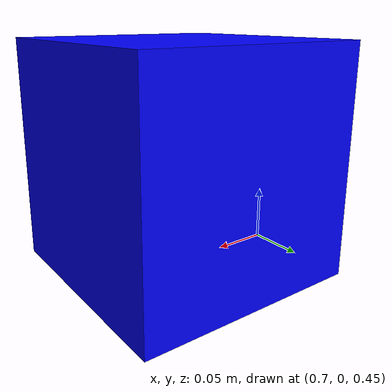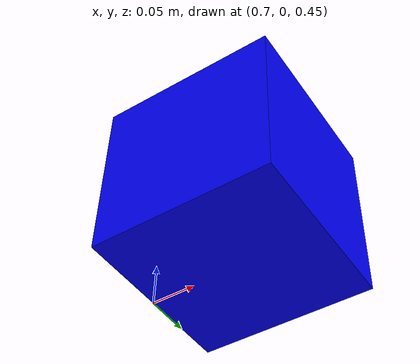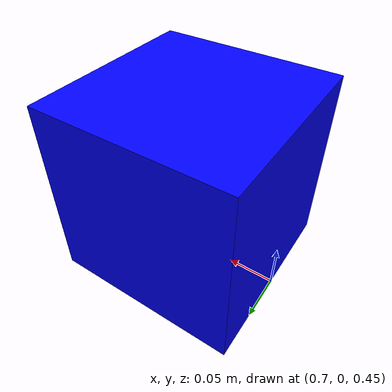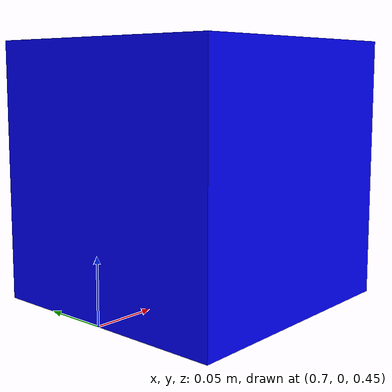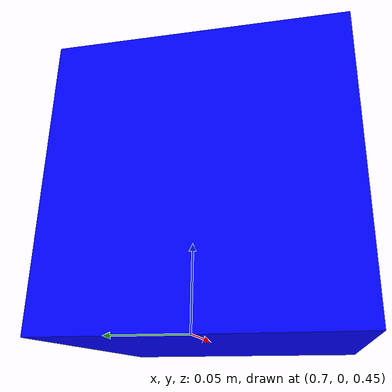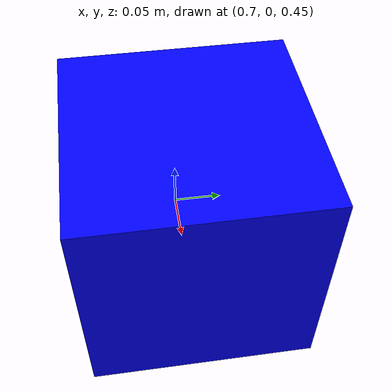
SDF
<?xml version="1.0" ?>
<sdf version="1.6">
  <model name="test_box">
    <pose>0.8 0 0.55 0 0 0</pose>
    <link name="link">
      <visual name="visual">
        <geometry><box><size>0.2 0.2 0.2</size></box></geometry>
        <material><ambient>0 0 1 1</ambient><diffuse>0 0 1 1</diffuse></material>
      </visual>
      <collision name="collision">
        <geometry><box><size>0.2 0.2 0.2</size></box></geometry>
      </collision>
    </link>
  </model>
</sdf>
